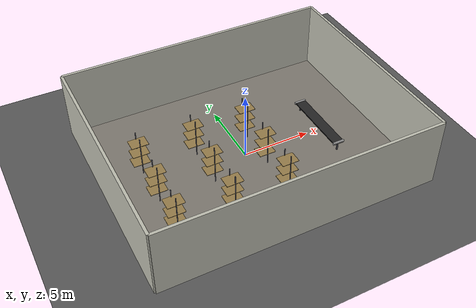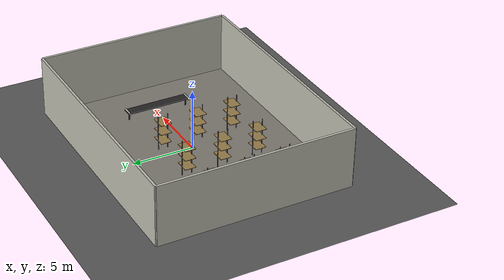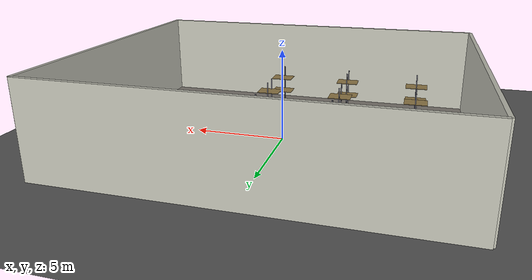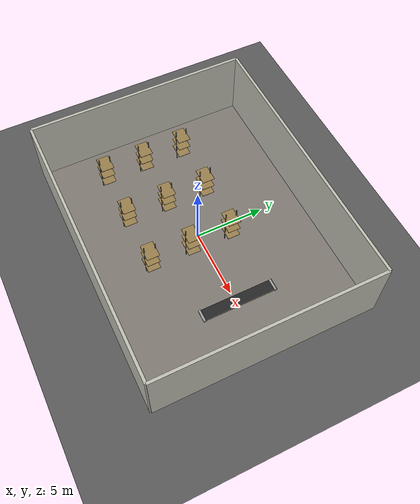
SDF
<?xml version="1.0" ?>
<sdf version="1.8">
  <world name="kiwi_world">

    <!-- PHYSICS -->
    <gravity>0 0 -9.81</gravity>
    <physics name="default_physics" type="ode">
      <max_step_size>0.001</max_step_size>
      <real_time_factor>1.0</real_time_factor>
      <real_time_update_rate>1000</real_time_update_rate>
      <ode>
        <solver>
          <type>quick</type>
          <iters>50</iters>
        </solver>
      </ode>
    </physics>

    <!-- GUI  -->
    <gui>
      <camera name="user_camera">
        <pose>12 -8 6 0 0.5 2.4</pose>
      </camera>
    </gui>

    <!--  PLUGINS  -->
    <plugin filename="gz-sim-physics-system" name="gz::sim::systems::Physics"/>
    <plugin filename="gz-sim-scene-broadcaster-system" name="gz::sim::systems::SceneBroadcaster"/>
    <plugin filename="gz-sim-user-commands-system" name="gz::sim::systems::UserCommands"/>
    <plugin filename="gz-sim-sensors-system" name="gz::sim::systems::Sensors"/>
    <plugin filename="gz-sim-contact-system" name="gz::sim::systems::Contact"/>

    <!-- SCENE  -->
    <scene>
      <ambient>0.4 0.4 0.4 1</ambient>
      <background>0.2 0.2 0.3 1</background>
    </scene>

    <!--  LIGHTING  -->
    <!-- Overhead warehouse lights -->
    <light type="directional" name="warehouse_light_main">
      <cast_shadows>true</cast_shadows>
      <pose>0 0 12 0 0 0</pose>
      <diffuse>0.85 0.85 0.8 1</diffuse>
      <specular>0.3 0.3 0.3 1</specular>
      <direction>-0.2 0.1 -0.9</direction>
    </light>

    <light type="point" name="warehouse_light_a">
      <pose>-5 -5 7 0 0 0</pose>
      <diffuse>0.6 0.6 0.55 1</diffuse>
      <specular>0.1 0.1 0.1 1</specular>
      <attenuation>
        <range>20</range>
        <constant>0.5</constant>
        <linear>0.01</linear>
        <quadratic>0.001</quadratic>
      </attenuation>
    </light>

    <light type="point" name="warehouse_light_b">
      <pose>5 5 7 0 0 0</pose>
      <diffuse>0.6 0.6 0.55 1</diffuse>
      <specular>0.1 0.1 0.1 1</specular>
      <attenuation>
        <range>20</range>
        <constant>0.5</constant>
        <linear>0.01</linear>
        <quadratic>0.001</quadratic>
      </attenuation>
    </light>

    <!-- GROUND PLANE -->
    <model name="ground_plane">
      <static>true</static>
      <link name="link">
        <collision name="collision">
          <geometry>
            <plane>
              <normal>0 0 1</normal>
              <size>100 100</size>
            </plane>
          </geometry>
          <surface>
            <friction>
              <ode>
                <mu>1.0</mu>
                <mu2>1.0</mu2>
              </ode>
            </friction>
          </surface>
        </collision>
        <visual name="visual">
          <geometry>
            <plane>
              <normal>0 0 1</normal>
              <size>100 100</size>
            </plane>
          </geometry>
          <material>
            <ambient>0.3 0.3 0.3 1</ambient>
            <diffuse>0.35 0.35 0.35 1</diffuse>
          </material>
        </visual>
      </link>
    </model>

    <!--  WAREHOUSE FLOOR  -->
    <model name="warehouse_floor">
      <static>true</static>
      <pose>0 0 0.001 0 0 0</pose>
      <link name="link">
        <visual name="visual">
          <geometry>
            <box><size>20 16 0.001</size></box>
          </geometry>
          <material>
            <ambient>0.45 0.43 0.4 1</ambient>
            <diffuse>0.5 0.48 0.45 1</diffuse>
          </material>
        </visual>
      </link>
    </model>

    <!-- WAREHOUSE WALLS -->
    <!-- North wall -->
    <model name="wall_north">
      <static>true</static>
      <pose>0 8 2.5 0 0 0</pose>
      <link name="link">
        <collision name="collision">
          <geometry>
            <box><size>20 0.2 5</size></box>
          </geometry>
        </collision>
        <visual name="visual">
          <geometry>
            <box><size>20 0.2 5</size></box>
          </geometry>
          <material>
            <ambient>0.7 0.7 0.65 1</ambient>
            <diffuse>0.75 0.75 0.7 1</diffuse>
          </material>
        </visual>
      </link>
    </model>

    <!-- South wall -->
    <model name="wall_south">
      <static>true</static>
      <pose>0 -8 2.5 0 0 0</pose>
      <link name="link">
        <collision name="collision">
          <geometry>
            <box><size>20 0.2 5</size></box>
          </geometry>
        </collision>
        <visual name="visual">
          <geometry>
            <box><size>20 0.2 5</size></box>
          </geometry>
          <material>
            <ambient>0.7 0.7 0.65 1</ambient>
            <diffuse>0.75 0.75 0.7 1</diffuse>
          </material>
        </visual>
      </link>
    </model>

    <!-- East wall -->
    <model name="wall_east">
      <static>true</static>
      <pose>10 0 2.5 0 0 0</pose>
      <link name="link">
        <collision name="collision">
          <geometry>
            <box><size>0.2 16 5</size></box>
          </geometry>
        </collision>
        <visual name="visual">
          <geometry>
            <box><size>0.2 16 5</size></box>
          </geometry>
          <material>
            <ambient>0.7 0.7 0.65 1</ambient>
            <diffuse>0.75 0.75 0.7 1</diffuse>
          </material>
        </visual>
      </link>
    </model>

    <!-- West wall -->
    <model name="wall_west">
      <static>true</static>
      <pose>-10 0 2.5 0 0 0</pose>
      <link name="link">
        <collision name="collision">
          <geometry>
            <box><size>0.2 16 5</size></box>
          </geometry>
        </collision>
        <visual name="visual">
          <geometry>
            <box><size>0.2 16 5</size></box>
          </geometry>
          <material>
            <ambient>0.7 0.7 0.65 1</ambient>
            <diffuse>0.75 0.75 0.7 1</diffuse>
          </material>
        </visual>
      </link>
    </model>

    <!--  SHELVING RACK ROW A (left side) -->
    <!-- Rack A1 -->
    <model name="aisle_1_shelf_1">
      <static>true</static>
      <pose>-7 -4 0 0 0 0</pose>
      <link name="link">
        <!-- Left upright -->
        <visual name="left_upright">
          <pose>0 -0.4 1.5 0 0 0</pose>
          <geometry><box><size>0.05 0.05 3.0</size></box></geometry>
          <material><ambient>0.3 0.3 0.35 1</ambient><diffuse>0.4 0.4 0.45 1</diffuse></material>
        </visual>
        <collision name="left_upright_col">
          <pose>0 -0.4 1.5 0 0 0</pose>
          <geometry><box><size>0.05 0.05 3.0</size></box></geometry>
        </collision>
        <!-- Right upright -->
        <visual name="right_upright">
          <pose>0 0.4 1.5 0 0 0</pose>
          <geometry><box><size>0.05 0.05 3.0</size></box></geometry>
          <material><ambient>0.3 0.3 0.35 1</ambient><diffuse>0.4 0.4 0.45 1</diffuse></material>
        </visual>
        <collision name="right_upright_col">
          <pose>0 0.4 1.5 0 0 0</pose>
          <geometry><box><size>0.05 0.05 3.0</size></box></geometry>
        </collision>
        <!-- Shelf 1 -->
        <visual name="shelf_1">
          <pose>0 0 0.8 0 0 0</pose>
          <geometry><box><size>1.2 0.9 0.03</size></box></geometry>
          <material><ambient>0.5 0.4 0.25 1</ambient><diffuse>0.6 0.5 0.3 1</diffuse></material>
        </visual>
        <collision name="shelf_1_col">
          <pose>0 0 0.8 0 0 0</pose>
          <geometry><box><size>1.2 0.9 0.03</size></box></geometry>
        </collision>
        <!-- Shelf 2 -->
        <visual name="shelf_2">
          <pose>0 0 1.6 0 0 0</pose>
          <geometry><box><size>1.2 0.9 0.03</size></box></geometry>
          <material><ambient>0.5 0.4 0.25 1</ambient><diffuse>0.6 0.5 0.3 1</diffuse></material>
        </visual>
        <collision name="shelf_2_col">
          <pose>0 0 1.6 0 0 0</pose>
          <geometry><box><size>1.2 0.9 0.03</size></box></geometry>
        </collision>
        <!-- Shelf 3 -->
        <visual name="shelf_3">
          <pose>0 0 2.4 0 0 0</pose>
          <geometry><box><size>1.2 0.9 0.03</size></box></geometry>
          <material><ambient>0.5 0.4 0.25 1</ambient><diffuse>0.6 0.5 0.3 1</diffuse></material>
        </visual>
        <collision name="shelf_3_col">
          <pose>0 0 2.4 0 0 0</pose>
          <geometry><box><size>1.2 0.9 0.03</size></box></geometry>
        </collision>
      </link>
    </model>

    <!-- Rack A2 -->
    <model name="aisle_1_shelf_2">
      <static>true</static>
      <pose>-7 -1 0 0 0 0</pose>
      <link name="link">
        <visual name="left_upright">
          <pose>0 -0.4 1.5 0 0 0</pose>
          <geometry><box><size>0.05 0.05 3.0</size></box></geometry>
          <material><ambient>0.3 0.3 0.35 1</ambient><diffuse>0.4 0.4 0.45 1</diffuse></material>
        </visual>
        <collision name="left_upright_col">
          <pose>0 -0.4 1.5 0 0 0</pose>
          <geometry><box><size>0.05 0.05 3.0</size></box></geometry>
        </collision>
        <visual name="right_upright">
          <pose>0 0.4 1.5 0 0 0</pose>
          <geometry><box><size>0.05 0.05 3.0</size></box></geometry>
          <material><ambient>0.3 0.3 0.35 1</ambient><diffuse>0.4 0.4 0.45 1</diffuse></material>
        </visual>
        <collision name="right_upright_col">
          <pose>0 0.4 1.5 0 0 0</pose>
          <geometry><box><size>0.05 0.05 3.0</size></box></geometry>
        </collision>
        <visual name="shelf_1">
          <pose>0 0 0.8 0 0 0</pose>
          <geometry><box><size>1.2 0.9 0.03</size></box></geometry>
          <material><ambient>0.5 0.4 0.25 1</ambient><diffuse>0.6 0.5 0.3 1</diffuse></material>
        </visual>
        <collision name="shelf_1_col">
          <pose>0 0 0.8 0 0 0</pose>
          <geometry><box><size>1.2 0.9 0.03</size></box></geometry>
        </collision>
        <visual name="shelf_2">
          <pose>0 0 1.6 0 0 0</pose>
          <geometry><box><size>1.2 0.9 0.03</size></box></geometry>
          <material><ambient>0.5 0.4 0.25 1</ambient><diffuse>0.6 0.5 0.3 1</diffuse></material>
        </visual>
        <collision name="shelf_2_col">
          <pose>0 0 1.6 0 0 0</pose>
          <geometry><box><size>1.2 0.9 0.03</size></box></geometry>
        </collision>
        <visual name="shelf_3">
          <pose>0 0 2.4 0 0 0</pose>
          <geometry><box><size>1.2 0.9 0.03</size></box></geometry>
          <material><ambient>0.5 0.4 0.25 1</ambient><diffuse>0.6 0.5 0.3 1</diffuse></material>
        </visual>
        <collision name="shelf_3_col">
          <pose>0 0 2.4 0 0 0</pose>
          <geometry><box><size>1.2 0.9 0.03</size></box></geometry>
        </collision>
      </link>
    </model>

    <!-- Rack A3 -->
    <model name="aisle_1_shelf_3">
      <static>true</static>
      <pose>-7 2 0 0 0 0</pose>
      <link name="link">
        <visual name="left_upright">
          <pose>0 -0.4 1.5 0 0 0</pose>
          <geometry><box><size>0.05 0.05 3.0</size></box></geometry>
          <material><ambient>0.3 0.3 0.35 1</ambient><diffuse>0.4 0.4 0.45 1</diffuse></material>
        </visual>
        <collision name="left_upright_col">
          <pose>0 -0.4 1.5 0 0 0</pose>
          <geometry><box><size>0.05 0.05 3.0</size></box></geometry>
        </collision>
        <visual name="right_upright">
          <pose>0 0.4 1.5 0 0 0</pose>
          <geometry><box><size>0.05 0.05 3.0</size></box></geometry>
          <material><ambient>0.3 0.3 0.35 1</ambient><diffuse>0.4 0.4 0.45 1</diffuse></material>
        </visual>
        <collision name="right_upright_col">
          <pose>0 0.4 1.5 0 0 0</pose>
          <geometry><box><size>0.05 0.05 3.0</size></box></geometry>
        </collision>
        <visual name="shelf_1">
          <pose>0 0 0.8 0 0 0</pose>
          <geometry><box><size>1.2 0.9 0.03</size></box></geometry>
          <material><ambient>0.5 0.4 0.25 1</ambient><diffuse>0.6 0.5 0.3 1</diffuse></material>
        </visual>
        <collision name="shelf_1_col">
          <pose>0 0 0.8 0 0 0</pose>
          <geometry><box><size>1.2 0.9 0.03</size></box></geometry>
        </collision>
        <visual name="shelf_2">
          <pose>0 0 1.6 0 0 0</pose>
          <geometry><box><size>1.2 0.9 0.03</size></box></geometry>
          <material><ambient>0.5 0.4 0.25 1</ambient><diffuse>0.6 0.5 0.3 1</diffuse></material>
        </visual>
        <collision name="shelf_2_col">
          <pose>0 0 1.6 0 0 0</pose>
          <geometry><box><size>1.2 0.9 0.03</size></box></geometry>
        </collision>
        <visual name="shelf_3">
          <pose>0 0 2.4 0 0 0</pose>
          <geometry><box><size>1.2 0.9 0.03</size></box></geometry>
          <material><ambient>0.5 0.4 0.25 1</ambient><diffuse>0.6 0.5 0.3 1</diffuse></material>
        </visual>
        <collision name="shelf_3_col">
          <pose>0 0 2.4 0 0 0</pose>
          <geometry><box><size>1.2 0.9 0.03</size></box></geometry>
        </collision>
      </link>
    </model>

    <!--  SHELVING RACK ROW B (center)  -->
    <!-- Rack B1 -->
    <model name="aisle_2_shelf_1">
      <static>true</static>
      <pose>-3 -4 0 0 0 0</pose>
      <link name="link">
        <visual name="left_upright">
          <pose>0 -0.4 1.5 0 0 0</pose>
          <geometry><box><size>0.05 0.05 3.0</size></box></geometry>
          <material><ambient>0.3 0.3 0.35 1</ambient><diffuse>0.4 0.4 0.45 1</diffuse></material>
        </visual>
        <collision name="left_upright_col">
          <pose>0 -0.4 1.5 0 0 0</pose>
          <geometry><box><size>0.05 0.05 3.0</size></box></geometry>
        </collision>
        <visual name="right_upright">
          <pose>0 0.4 1.5 0 0 0</pose>
          <geometry><box><size>0.05 0.05 3.0</size></box></geometry>
          <material><ambient>0.3 0.3 0.35 1</ambient><diffuse>0.4 0.4 0.45 1</diffuse></material>
        </visual>
        <collision name="right_upright_col">
          <pose>0 0.4 1.5 0 0 0</pose>
          <geometry><box><size>0.05 0.05 3.0</size></box></geometry>
        </collision>
        <visual name="shelf_1">
          <pose>0 0 0.8 0 0 0</pose>
          <geometry><box><size>1.2 0.9 0.03</size></box></geometry>
          <material><ambient>0.5 0.4 0.25 1</ambient><diffuse>0.6 0.5 0.3 1</diffuse></material>
        </visual>
        <collision name="shelf_1_col">
          <pose>0 0 0.8 0 0 0</pose>
          <geometry><box><size>1.2 0.9 0.03</size></box></geometry>
        </collision>
        <visual name="shelf_2">
          <pose>0 0 1.6 0 0 0</pose>
          <geometry><box><size>1.2 0.9 0.03</size></box></geometry>
          <material><ambient>0.5 0.4 0.25 1</ambient><diffuse>0.6 0.5 0.3 1</diffuse></material>
        </visual>
        <collision name="shelf_2_col">
          <pose>0 0 1.6 0 0 0</pose>
          <geometry><box><size>1.2 0.9 0.03</size></box></geometry>
        </collision>
        <visual name="shelf_3">
          <pose>0 0 2.4 0 0 0</pose>
          <geometry><box><size>1.2 0.9 0.03</size></box></geometry>
          <material><ambient>0.5 0.4 0.25 1</ambient><diffuse>0.6 0.5 0.3 1</diffuse></material>
        </visual>
        <collision name="shelf_3_col">
          <pose>0 0 2.4 0 0 0</pose>
          <geometry><box><size>1.2 0.9 0.03</size></box></geometry>
        </collision>
      </link>
    </model>

    <!-- Rack B2 -->
    <model name="aisle_2_shelf_2">
      <static>true</static>
      <pose>-3 -1 0 0 0 0</pose>
      <link name="link">
        <visual name="left_upright">
          <pose>0 -0.4 1.5 0 0 0</pose>
          <geometry><box><size>0.05 0.05 3.0</size></box></geometry>
          <material><ambient>0.3 0.3 0.35 1</ambient><diffuse>0.4 0.4 0.45 1</diffuse></material>
        </visual>
        <collision name="left_upright_col">
          <pose>0 -0.4 1.5 0 0 0</pose>
          <geometry><box><size>0.05 0.05 3.0</size></box></geometry>
        </collision>
        <visual name="right_upright">
          <pose>0 0.4 1.5 0 0 0</pose>
          <geometry><box><size>0.05 0.05 3.0</size></box></geometry>
          <material><ambient>0.3 0.3 0.35 1</ambient><diffuse>0.4 0.4 0.45 1</diffuse></material>
        </visual>
        <collision name="right_upright_col">
          <pose>0 0.4 1.5 0 0 0</pose>
          <geometry><box><size>0.05 0.05 3.0</size></box></geometry>
        </collision>
        <visual name="shelf_1">
          <pose>0 0 0.8 0 0 0</pose>
          <geometry><box><size>1.2 0.9 0.03</size></box></geometry>
          <material><ambient>0.5 0.4 0.25 1</ambient><diffuse>0.6 0.5 0.3 1</diffuse></material>
        </visual>
        <collision name="shelf_1_col">
          <pose>0 0 0.8 0 0 0</pose>
          <geometry><box><size>1.2 0.9 0.03</size></box></geometry>
        </collision>
        <visual name="shelf_2">
          <pose>0 0 1.6 0 0 0</pose>
          <geometry><box><size>1.2 0.9 0.03</size></box></geometry>
          <material><ambient>0.5 0.4 0.25 1</ambient><diffuse>0.6 0.5 0.3 1</diffuse></material>
        </visual>
        <collision name="shelf_2_col">
          <pose>0 0 1.6 0 0 0</pose>
          <geometry><box><size>1.2 0.9 0.03</size></box></geometry>
        </collision>
        <visual name="shelf_3">
          <pose>0 0 2.4 0 0 0</pose>
          <geometry><box><size>1.2 0.9 0.03</size></box></geometry>
          <material><ambient>0.5 0.4 0.25 1</ambient><diffuse>0.6 0.5 0.3 1</diffuse></material>
        </visual>
        <collision name="shelf_3_col">
          <pose>0 0 2.4 0 0 0</pose>
          <geometry><box><size>1.2 0.9 0.03</size></box></geometry>
        </collision>
      </link>
    </model>

    <!-- Rack B3 -->
    <model name="aisle_2_shelf_3">
      <static>true</static>
      <pose>-3 2 0 0 0 0</pose>
      <link name="link">
        <visual name="left_upright">
          <pose>0 -0.4 1.5 0 0 0</pose>
          <geometry><box><size>0.05 0.05 3.0</size></box></geometry>
          <material><ambient>0.3 0.3 0.35 1</ambient><diffuse>0.4 0.4 0.45 1</diffuse></material>
        </visual>
        <collision name="left_upright_col">
          <pose>0 -0.4 1.5 0 0 0</pose>
          <geometry><box><size>0.05 0.05 3.0</size></box></geometry>
        </collision>
        <visual name="right_upright">
          <pose>0 0.4 1.5 0 0 0</pose>
          <geometry><box><size>0.05 0.05 3.0</size></box></geometry>
          <material><ambient>0.3 0.3 0.35 1</ambient><diffuse>0.4 0.4 0.45 1</diffuse></material>
        </visual>
        <collision name="right_upright_col">
          <pose>0 0.4 1.5 0 0 0</pose>
          <geometry><box><size>0.05 0.05 3.0</size></box></geometry>
        </collision>
        <visual name="shelf_1">
          <pose>0 0 0.8 0 0 0</pose>
          <geometry><box><size>1.2 0.9 0.03</size></box></geometry>
          <material><ambient>0.5 0.4 0.25 1</ambient><diffuse>0.6 0.5 0.3 1</diffuse></material>
        </visual>
        <collision name="shelf_1_col">
          <pose>0 0 0.8 0 0 0</pose>
          <geometry><box><size>1.2 0.9 0.03</size></box></geometry>
        </collision>
        <visual name="shelf_2">
          <pose>0 0 1.6 0 0 0</pose>
          <geometry><box><size>1.2 0.9 0.03</size></box></geometry>
          <material><ambient>0.5 0.4 0.25 1</ambient><diffuse>0.6 0.5 0.3 1</diffuse></material>
        </visual>
        <collision name="shelf_2_col">
          <pose>0 0 1.6 0 0 0</pose>
          <geometry><box><size>1.2 0.9 0.03</size></box></geometry>
        </collision>
        <visual name="shelf_3">
          <pose>0 0 2.4 0 0 0</pose>
          <geometry><box><size>1.2 0.9 0.03</size></box></geometry>
          <material><ambient>0.5 0.4 0.25 1</ambient><diffuse>0.6 0.5 0.3 1</diffuse></material>
        </visual>
        <collision name="shelf_3_col">
          <pose>0 0 2.4 0 0 0</pose>
          <geometry><box><size>1.2 0.9 0.03</size></box></geometry>
        </collision>
      </link>
    </model>

    <!-- SHELVING RACK ROW C (right side)  -->
    <model name="aisle_3_shelf_1">
      <static>true</static>
      <pose>1 -4 0 0 0 0</pose>
      <link name="link">
        <visual name="left_upright"><pose>0 -0.4 1.5 0 0 0</pose><geometry><box><size>0.05 0.05 3.0</size></box></geometry><material><ambient>0.3 0.3 0.35 1</ambient><diffuse>0.4 0.4 0.45 1</diffuse></material></visual>
        <collision name="left_upright_col"><pose>0 -0.4 1.5 0 0 0</pose><geometry><box><size>0.05 0.05 3.0</size></box></geometry></collision>
        <visual name="right_upright"><pose>0 0.4 1.5 0 0 0</pose><geometry><box><size>0.05 0.05 3.0</size></box></geometry><material><ambient>0.3 0.3 0.35 1</ambient><diffuse>0.4 0.4 0.45 1</diffuse></material></visual>
        <collision name="right_upright_col"><pose>0 0.4 1.5 0 0 0</pose><geometry><box><size>0.05 0.05 3.0</size></box></geometry></collision>
        <visual name="shelf_1"><pose>0 0 0.8 0 0 0</pose><geometry><box><size>1.2 0.9 0.03</size></box></geometry><material><ambient>0.5 0.4 0.25 1</ambient><diffuse>0.6 0.5 0.3 1</diffuse></material></visual>
        <collision name="shelf_1_col"><pose>0 0 0.8 0 0 0</pose><geometry><box><size>1.2 0.9 0.03</size></box></geometry></collision>
        <visual name="shelf_2"><pose>0 0 1.6 0 0 0</pose><geometry><box><size>1.2 0.9 0.03</size></box></geometry><material><ambient>0.5 0.4 0.25 1</ambient><diffuse>0.6 0.5 0.3 1</diffuse></material></visual>
        <collision name="shelf_2_col"><pose>0 0 1.6 0 0 0</pose><geometry><box><size>1.2 0.9 0.03</size></box></geometry></collision>
        <visual name="shelf_3"><pose>0 0 2.4 0 0 0</pose><geometry><box><size>1.2 0.9 0.03</size></box></geometry><material><ambient>0.5 0.4 0.25 1</ambient><diffuse>0.6 0.5 0.3 1</diffuse></material></visual>
        <collision name="shelf_3_col"><pose>0 0 2.4 0 0 0</pose><geometry><box><size>1.2 0.9 0.03</size></box></geometry></collision>
      </link>
    </model>

    <model name="aisle_3_shelf_2">
      <static>true</static>
      <pose>1 -1 0 0 0 0</pose>
      <link name="link">
        <visual name="left_upright"><pose>0 -0.4 1.5 0 0 0</pose><geometry><box><size>0.05 0.05 3.0</size></box></geometry><material><ambient>0.3 0.3 0.35 1</ambient><diffuse>0.4 0.4 0.45 1</diffuse></material></visual>
        <collision name="left_upright_col"><pose>0 -0.4 1.5 0 0 0</pose><geometry><box><size>0.05 0.05 3.0</size></box></geometry></collision>
        <visual name="right_upright"><pose>0 0.4 1.5 0 0 0</pose><geometry><box><size>0.05 0.05 3.0</size></box></geometry><material><ambient>0.3 0.3 0.35 1</ambient><diffuse>0.4 0.4 0.45 1</diffuse></material></visual>
        <collision name="right_upright_col"><pose>0 0.4 1.5 0 0 0</pose><geometry><box><size>0.05 0.05 3.0</size></box></geometry></collision>
        <visual name="shelf_1"><pose>0 0 0.8 0 0 0</pose><geometry><box><size>1.2 0.9 0.03</size></box></geometry><material><ambient>0.5 0.4 0.25 1</ambient><diffuse>0.6 0.5 0.3 1</diffuse></material></visual>
        <collision name="shelf_1_col"><pose>0 0 0.8 0 0 0</pose><geometry><box><size>1.2 0.9 0.03</size></box></geometry></collision>
        <visual name="shelf_2"><pose>0 0 1.6 0 0 0</pose><geometry><box><size>1.2 0.9 0.03</size></box></geometry><material><ambient>0.5 0.4 0.25 1</ambient><diffuse>0.6 0.5 0.3 1</diffuse></material></visual>
        <collision name="shelf_2_col"><pose>0 0 1.6 0 0 0</pose><geometry><box><size>1.2 0.9 0.03</size></box></geometry></collision>
        <visual name="shelf_3"><pose>0 0 2.4 0 0 0</pose><geometry><box><size>1.2 0.9 0.03</size></box></geometry><material><ambient>0.5 0.4 0.25 1</ambient><diffuse>0.6 0.5 0.3 1</diffuse></material></visual>
        <collision name="shelf_3_col"><pose>0 0 2.4 0 0 0</pose><geometry><box><size>1.2 0.9 0.03</size></box></geometry></collision>
      </link>
    </model>

    <model name="aisle_3_shelf_3">
      <static>true</static>
      <pose>1 2 0 0 0 0</pose>
      <link name="link">
        <visual name="left_upright"><pose>0 -0.4 1.5 0 0 0</pose><geometry><box><size>0.05 0.05 3.0</size></box></geometry><material><ambient>0.3 0.3 0.35 1</ambient><diffuse>0.4 0.4 0.45 1</diffuse></material></visual>
        <collision name="left_upright_col"><pose>0 -0.4 1.5 0 0 0</pose><geometry><box><size>0.05 0.05 3.0</size></box></geometry></collision>
        <visual name="right_upright"><pose>0 0.4 1.5 0 0 0</pose><geometry><box><size>0.05 0.05 3.0</size></box></geometry><material><ambient>0.3 0.3 0.35 1</ambient><diffuse>0.4 0.4 0.45 1</diffuse></material></visual>
        <collision name="right_upright_col"><pose>0 0.4 1.5 0 0 0</pose><geometry><box><size>0.05 0.05 3.0</size></box></geometry></collision>
        <visual name="shelf_1"><pose>0 0 0.8 0 0 0</pose><geometry><box><size>1.2 0.9 0.03</size></box></geometry><material><ambient>0.5 0.4 0.25 1</ambient><diffuse>0.6 0.5 0.3 1</diffuse></material></visual>
        <collision name="shelf_1_col"><pose>0 0 0.8 0 0 0</pose><geometry><box><size>1.2 0.9 0.03</size></box></geometry></collision>
        <visual name="shelf_2"><pose>0 0 1.6 0 0 0</pose><geometry><box><size>1.2 0.9 0.03</size></box></geometry><material><ambient>0.5 0.4 0.25 1</ambient><diffuse>0.6 0.5 0.3 1</diffuse></material></visual>
        <collision name="shelf_2_col"><pose>0 0 1.6 0 0 0</pose><geometry><box><size>1.2 0.9 0.03</size></box></geometry></collision>
        <visual name="shelf_3"><pose>0 0 2.4 0 0 0</pose><geometry><box><size>1.2 0.9 0.03</size></box></geometry><material><ambient>0.5 0.4 0.25 1</ambient><diffuse>0.6 0.5 0.3 1</diffuse></material></visual>
        <collision name="shelf_3_col"><pose>0 0 2.4 0 0 0</pose><geometry><box><size>1.2 0.9 0.03</size></box></geometry></collision>
      </link>
    </model>

    <model name="render_confirm_cam">
      <static>true</static>
      <pose>3 0 2 0 0.34 0</pose>
      <link name="link">
        <sensor type="camera" name="render_confirm_camera">
          <topic>/render_confirm/camera</topic>
          <always_on>1</always_on>
          <update_rate>30</update_rate>
          <camera>
            <horizontal_fov>1.0472</horizontal_fov>
            <image>
              <width>800</width>
              <height>600</height>
              <format>R8G8B8</format>
            </image>
            <clip>
              <near>0.05</near>
              <far>100</far>
            </clip>
          </camera>
        </sensor>
      </link>
    </model>

    <!-- conveyor belt  -->
    <model name="conveyor_belt_1">
      <static>true</static>
      <pose>6 0 0 0 0 1.5708</pose>
      <link name="link">
        <visual name="leg_1_visual">
          <pose>-2.5 0 0.35 0 0 0</pose>
          <geometry><box><size>0.1 0.1 0.7</size></box></geometry>
          <material><ambient>0.25 0.25 0.28 1</ambient><diffuse>0.3 0.3 0.33 1</diffuse></material>
        </visual>
        <collision name="leg_1_collision">
          <pose>-2.5 0 0.35 0 0 0</pose>
          <geometry><box><size>0.1 0.1 0.7</size></box></geometry>
        </collision>
        <visual name="leg_2_visual">
          <pose>2.5 0 0.35 0 0 0</pose>
          <geometry><box><size>0.1 0.1 0.7</size></box></geometry>
          <material><ambient>0.25 0.25 0.28 1</ambient><diffuse>0.3 0.3 0.33 1</diffuse></material>
        </visual>
        <collision name="leg_2_collision">
          <pose>2.5 0 0.35 0 0 0</pose>
          <geometry><box><size>0.1 0.1 0.7</size></box></geometry>
        </collision>
        <visual name="belt_surface_visual">
          <pose>0 0 0.74 0 0 0</pose>
          <geometry><box><size>5.4 0.8 0.08</size></box></geometry>
          <material><ambient>0.1 0.1 0.1 1</ambient><diffuse>0.15 0.15 0.15 1</diffuse></material>
        </visual>
        <collision name="belt_surface_collision">
          <pose>0 0 0.74 0 0 0</pose>
          <geometry><box><size>5.4 0.8 0.08</size></box></geometry>
        </collision>
        <visual name="roller_1_visual">
          <pose>-2.6 0 0.74 1.5708 0 0</pose>
          <geometry><cylinder><radius>0.1</radius><length>0.85</length></cylinder></geometry>
          <material><ambient>0.5 0.5 0.5 1</ambient><diffuse>0.6 0.6 0.6 1</diffuse></material>
        </visual>
        <collision name="roller_1_collision">
          <pose>-2.6 0 0.74 1.5708 0 0</pose>
          <geometry><cylinder><radius>0.1</radius><length>0.85</length></cylinder></geometry>
        </collision>
        <visual name="roller_2_visual">
          <pose>2.6 0 0.74 1.5708 0 0</pose>
          <geometry><cylinder><radius>0.1</radius><length>0.85</length></cylinder></geometry>
          <material><ambient>0.5 0.5 0.5 1</ambient><diffuse>0.6 0.6 0.6 1</diffuse></material>
        </visual>
        <collision name="roller_2_collision">
          <pose>2.6 0 0.74 1.5708 0 0</pose>
          <geometry><cylinder><radius>0.1</radius><length>0.85</length></cylinder></geometry>
        </collision>
      </link>
    </model>
</world>
</sdf>
